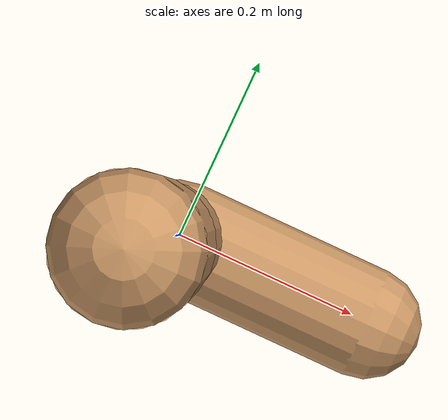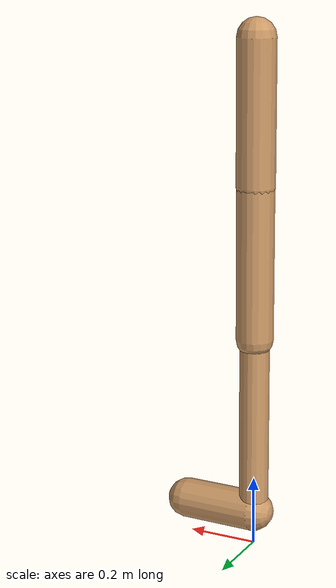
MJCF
<mujoco model="walker2d">
  <compiler angle="degree" coordinate="global" inertiafromgeom="true" />
  <default>
    <joint armature="0.01" damping=".1" limited="true" />
    <geom conaffinity="0" condim="3" contype="1" density="1000" friction="0.8 .1 .1" rgba="0.8 0.6 .4 1" />
  </default>
  <option integrator="RK4" timestep="0.002" />
  <worldbody>

    <body name="torso" pos="0 0 -0.040485059677281804">
      <joint armature="0" axis="1 0 0" damping="0" limited="false" name="ignorex" pos="0 0 0" stiffness="0" type="slide" />
      <joint armature="0" axis="0 0 1" damping="0" limited="false" name="ignorez" pos="0 0 0" ref="1.25" stiffness="0" type="slide" />
      <joint armature="0" axis="0 1 0" damping="0" limited="false" name="ignorey" pos="0 0 0" stiffness="0" type="hinge" />
      <geom fromto="0 0 1.45 0 0 1.05" name="torso_geom" size="0.05449169436080106" type="capsule" />
      <body name="thigh">
        <joint axis="0 -1 0" name="thigh_joint" pos="0 0 1.05" range="-150 0" type="hinge" />
        <geom fromto="0.0 0.0 1.05 0.0 0.0 0.619177133531344" name="thigh_geom" size="0.052981643128202006" type="capsule" />
        <body name="leg" pos="0.0 0.0 0.01917713353134398">
          <joint axis="0 -1 0" name="leg_joint" pos="0 0 0.6" range="-150 0" type="hinge" />
          <geom fromto="0.0 0.0 0.6 0.0 0.0 0.1213079261459378" name="leg_geom" size="0.042385314502561604" type="capsule" />
          <body name="foot" pos="0.0 0.0 0.021307926145937794">
            <joint axis="0 -1 0" name="foot_joint" pos="0 0 0.1" range="-45 45" type="hinge" />
            <geom fromto="-0.0 0.0 0.1 0.213474916669868 0.0 0.1" name="foot_geom" size="0.05793885100531664" type="capsule" />
          </body>
        </body>
      </body>

      <body name="thigh_left">
        <joint axis="0 -1 0" name="thigh_left_joint" pos="0 0 1.05" range="-150 0" type="hinge" />
        <geom fromto="0.0 0.0 1.05 0.0 0.0 0.619177133531344" name="thigh_left_geom" rgba=".7 .3 .6 1" size="0.052981643128202006" type="capsule" />
        <body name="leg_left" pos="0.0 0.0 0.01917713353134398">
          <joint axis="0 -1 0" name="leg_left_joint" pos="0 0 0.6" range="-150 0" type="hinge" />
          <geom fromto="0.0 0.0 0.6 0.0 0.0 0.1213079261459378" name="leg_left_geom" rgba=".7 .3 .6 1" size="0.042385314502561604" type="capsule" />
          <body name="foot_left" pos="0.0 0.0 0.021307926145937794">
            <joint axis="0 -1 0" name="foot_left_joint" pos="0 0 0.1" range="-45 45" type="hinge" />
            <geom fromto="-0.0 0.0 0.1 0.213474916669868 0.0 0.1" name="foot_left_geom" rgba=".7 .3 .6 1" size="0.05793885100531664" type="capsule" />
          </body>
        </body>
      </body>
    </body>
  </worldbody>
  <actuator>

    <motor ctrllimited="true" ctrlrange="-1.0 1.0" gear="100" joint="thigh_joint" />
    <motor ctrllimited="true" ctrlrange="-1.0 1.0" gear="100" joint="leg_joint" />
    <motor ctrllimited="true" ctrlrange="-1.0 1.0" gear="100" joint="foot_joint" />
    <motor ctrllimited="true" ctrlrange="-1.0 1.0" gear="100" joint="thigh_left_joint" />
    <motor ctrllimited="true" ctrlrange="-1.0 1.0" gear="100" joint="leg_left_joint" />
    <motor ctrllimited="true" ctrlrange="-1.0 1.0" gear="100" joint="foot_left_joint" />

  </actuator>
</mujoco>
